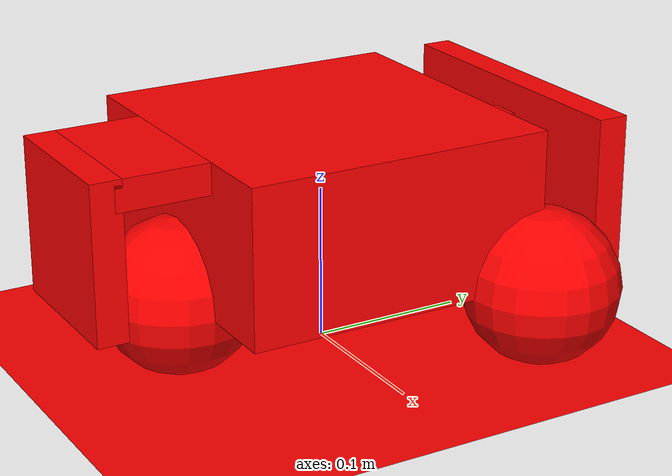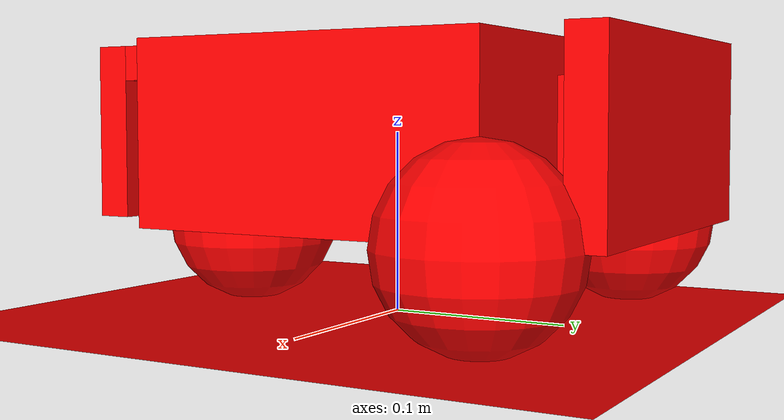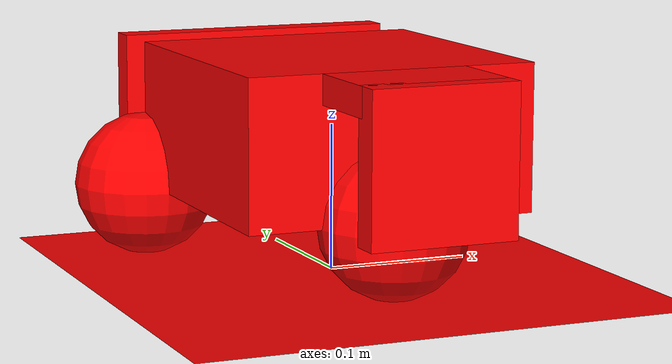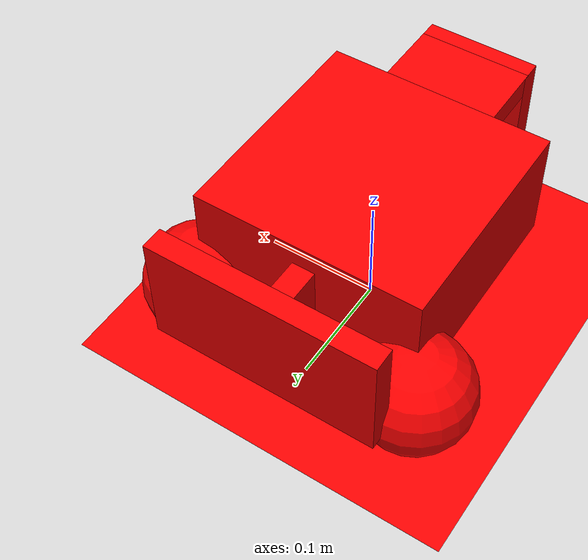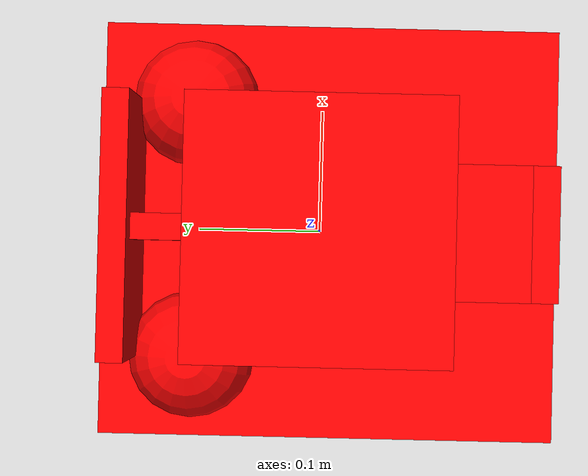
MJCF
<mujoco>
    <size njmax="3000" nconmax="1000"/>
    <option timestep="0.004"/>
    <default>
        <geom condim="6" density="5" rgba="1 0 0 1" size=".05" type="sphere"/>
        <joint damping=".001"/>
        <motor ctrlrange="-1 1" ctrllimited="true" forcerange="-.02 .02" forcelimited="true"/>
        <site size="0.032" type="sphere"/>
    </default>
    <asset>
        <texture name="grid" type="2d" builtin="checker" rgb1=".1 .2 .3" rgb2=".2 .3 .4" width="512" height="512" mark="edge" markrgb=".8 .8 .8"/>
        <material name="grid" texture="grid" texrepeat="1 1" texuniform="true" reflectance=".2"/>
    </asset>
    <worldbody>
        <light pos="0 0 20" dir="0 0 -1" diffuse="0.8 0.8 0.8" specular="0.3 0.3 0.3" castshadow="true"/>
        <geom name="floor" material="grid" size="5 5 0.1" type="plane" condim="6"/>
        <body name="robot" pos="0 0 .1">
            <site name="robot" pos="0 0 0"/>
            <camera name="vision" pos="0 0.1 .2" xyaxes="-1 0 0 0 -.4 1"/>
            <joint type="free" name="robot" damping="0"/>
            <geom name="robot" type="box" size=".1 .1 .05"/>
            <geom name="back_bumper" type="box" pos="0 .15 0" size=".1 .01 .05"/>
            <geom name="back_connector" type="box" pos="0 .125 0" size=".01 .025 .03"/>
            <geom name="front_bumper" type="box" pos="0 -.165 0" size=".05 .01 .05"/>
            <geom name="front_connector" type="box" pos="0 -.13 .04" size=".05 .03 .01"/>
            <body name="left" pos="-.1 .1 -.05">
                <joint type="hinge" name="left" axis="1 0 0"/>
                <geom type="sphere" name="left" />
            </body>
            <body name="right" pos=".1 .1 -.05">
                <joint type="hinge" name="right" axis="1 0 0"/>
                <geom type="sphere" name="right"/>
            </body>
            <body name="rear" pos="0 -.1 -.05">
                <joint name="rear" type="ball"/>
                <geom name="rear"/>
            </body>
        </body>
    </worldbody>
    <sensor>

        <ballquat joint="rear" name="ballquat_rear"/>
        <ballangvel joint="rear" name="ballangvel_rear"/>

        <!-- Used for observation -->
        <accelerometer site="robot" name="accelerometer"/>
        <velocimeter site="robot" name="velocimeter"/>
        <gyro site="robot" name="gyro"/>
        <magnetometer site="robot" name="magnetometer"/>

        <!-- Used for intrinsic constraints -->
        <subtreecom body="robot" name="subtreecom"/>
        <subtreelinvel body="robot" name="subtreelinvel"/>
        <subtreeangmom body="robot" name="subtreeangmom"/>
    </sensor>
    <actuator>
        <motor gear="1" jointinparent="left" name="left"/>
        <motor gear="1" jointinparent="right" name="right"/>
    </actuator>
</mujoco>
